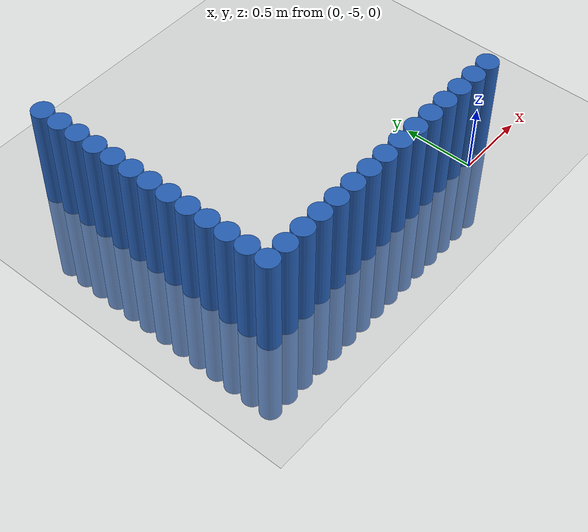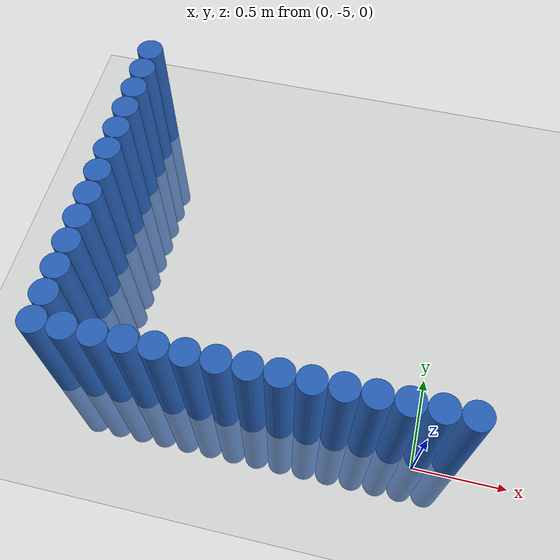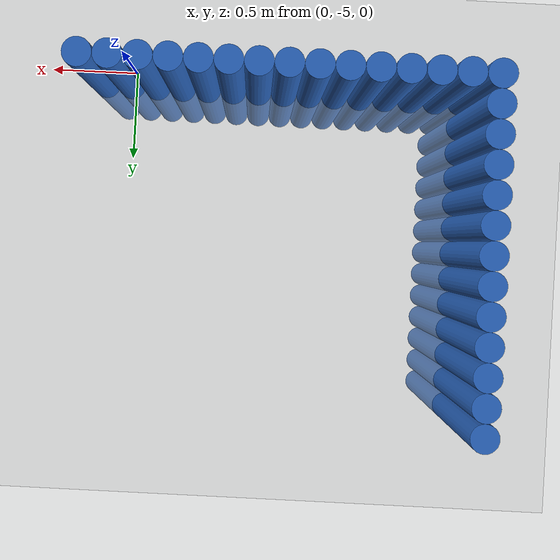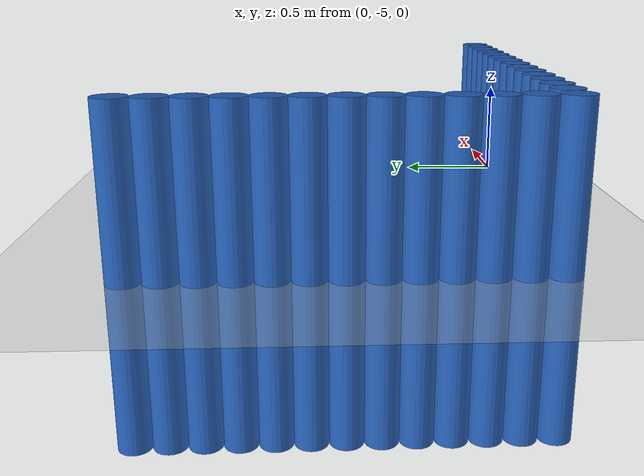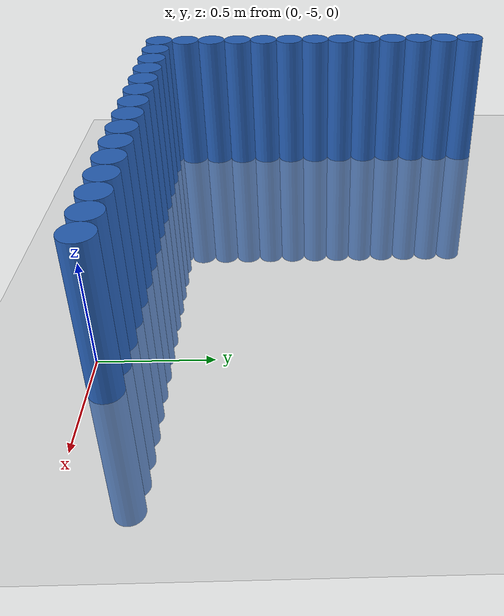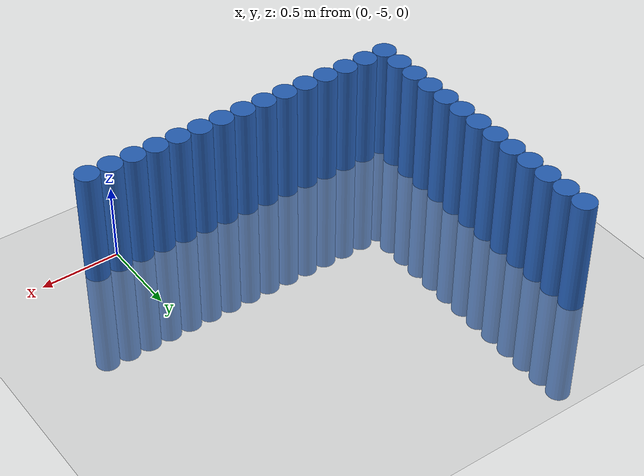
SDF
<sdf version="1.6">
 <world name="default">
  <model name="ground_plane">
   <static>1</static>
   <link name="link">
    <collision name="collision">
     <geometry><plane><normal>0 0 1</normal><size>100 100</size></plane></geometry>
     <surface><friction><ode><mu>100</mu><mu2>50</mu2></ode></friction></surface>
    </collision>
    <visual name="visual">
     <cast_shadows>0</cast_shadows>
     <geometry><plane><normal>0 0 1</normal><size>100 100</size></plane></geometry>
     <material>
      <script><uri>file://media/materials/scripts/gazebo.material</uri><name>Gazebo/Grey</name></script>
     </material>
    </visual>
   </link>
  </model>
  <model name="unit_cylinder_15">
   <static>1</static>
   <pose>0.175000 -4.925000 0.000000 0.000000 0.000000 0.000000</pose>
   <link name="link">
    <inertial>
     <mass>1</mass>
     <inertia><ixx>0.145833</ixx><ixy>0</ixy><ixz>0</ixz><iyy>0.145833</iyy><iyz>0</iyz><izz>0.125</izz></inertia>
    </inertial>
    <collision name="collision">
     <geometry><cylinder><radius>0.075000</radius><length>1.5</length></cylinder></geometry>
    </collision>
    <visual name="visual">
     <geometry><cylinder><radius>0.075000</radius><length>1.5</length></cylinder></geometry>
     <material>
      <ambient>0.152000 0.379000 0.720000 1</ambient>
      <diffuse>0.152000 0.379000 0.720000 1</diffuse>
     </material>
     <material>
      <script><name>Gazebo/Grey</name><uri>file://media/materials/scripts/gazebo.material</uri></script>
     </material>
    </visual>
   </link>
  </model>
  <model name="unit_cylinder_16">
   <static>1</static>
   <pose>0.025000 -4.925000 0.000000 0.000000 0.000000 0.000000</pose>
   <link name="link">
    <inertial>
     <mass>1</mass>
     <inertia><ixx>0.145833</ixx><ixy>0</ixy><ixz>0</ixz><iyy>0.145833</iyy><iyz>0</iyz><izz>0.125</izz></inertia>
    </inertial>
    <collision name="collision">
     <geometry><cylinder><radius>0.075000</radius><length>1.5</length></cylinder></geometry>
    </collision>
    <visual name="visual">
     <geometry><cylinder><radius>0.075000</radius><length>1.5</length></cylinder></geometry>
     <material>
      <ambient>0.152000 0.379000 0.720000 1</ambient>
      <diffuse>0.152000 0.379000 0.720000 1</diffuse>
     </material>
     <material>
      <script><name>Gazebo/Grey</name><uri>file://media/materials/scripts/gazebo.material</uri></script>
     </material>
    </visual>
   </link>
  </model>
  <model name="unit_cylinder_17">
   <static>1</static>
   <pose>-0.125000 -4.925000 0.000000 0.000000 0.000000 0.000000</pose>
   <link name="link">
    <inertial>
     <mass>1</mass>
     <inertia><ixx>0.145833</ixx><ixy>0</ixy><ixz>0</ixz><iyy>0.145833</iyy><iyz>0</iyz><izz>0.125</izz></inertia>
    </inertial>
    <collision name="collision">
     <geometry><cylinder><radius>0.075000</radius><length>1.5</length></cylinder></geometry>
    </collision>
    <visual name="visual">
     <geometry><cylinder><radius>0.075000</radius><length>1.5</length></cylinder></geometry>
     <material>
      <ambient>0.152000 0.379000 0.720000 1</ambient>
      <diffuse>0.152000 0.379000 0.720000 1</diffuse>
     </material>
     <material>
      <script><name>Gazebo/Grey</name><uri>file://media/materials/scripts/gazebo.material</uri></script>
     </material>
    </visual>
   </link>
  </model>
  <model name="unit_cylinder_18">
   <static>1</static>
   <pose>-0.275000 -4.925000 0.000000 0.000000 0.000000 0.000000</pose>
   <link name="link">
    <inertial>
     <mass>1</mass>
     <inertia><ixx>0.145833</ixx><ixy>0</ixy><ixz>0</ixz><iyy>0.145833</iyy><iyz>0</iyz><izz>0.125</izz></inertia>
    </inertial>
    <collision name="collision">
     <geometry><cylinder><radius>0.075000</radius><length>1.5</length></cylinder></geometry>
    </collision>
    <visual name="visual">
     <geometry><cylinder><radius>0.075000</radius><length>1.5</length></cylinder></geometry>
     <material>
      <ambient>0.152000 0.379000 0.720000 1</ambient>
      <diffuse>0.152000 0.379000 0.720000 1</diffuse>
     </material>
     <material>
      <script><name>Gazebo/Grey</name><uri>file://media/materials/scripts/gazebo.material</uri></script>
     </material>
    </visual>
   </link>
  </model>
  <model name="unit_cylinder_19">
   <static>1</static>
   <pose>-0.425000 -4.925000 0.000000 0.000000 0.000000 0.000000</pose>
   <link name="link">
    <inertial>
     <mass>1</mass>
     <inertia><ixx>0.145833</ixx><ixy>0</ixy><ixz>0</ixz><iyy>0.145833</iyy><iyz>0</iyz><izz>0.125</izz></inertia>
    </inertial>
    <collision name="collision">
     <geometry><cylinder><radius>0.075000</radius><length>1.5</length></cylinder></geometry>
    </collision>
    <visual name="visual">
     <geometry><cylinder><radius>0.075000</radius><length>1.5</length></cylinder></geometry>
     <material>
      <ambient>0.152000 0.379000 0.720000 1</ambient>
      <diffuse>0.152000 0.379000 0.720000 1</diffuse>
     </material>
     <material>
      <script><name>Gazebo/Grey</name><uri>file://media/materials/scripts/gazebo.material</uri></script>
     </material>
    </visual>
   </link>
  </model>
  <model name="unit_cylinder_20">
   <static>1</static>
   <pose>-0.575000 -4.925000 0.000000 0.000000 0.000000 0.000000</pose>
   <link name="link">
    <inertial>
     <mass>1</mass>
     <inertia><ixx>0.145833</ixx><ixy>0</ixy><ixz>0</ixz><iyy>0.145833</iyy><iyz>0</iyz><izz>0.125</izz></inertia>
    </inertial>
    <collision name="collision">
     <geometry><cylinder><radius>0.075000</radius><length>1.5</length></cylinder></geometry>
    </collision>
    <visual name="visual">
     <geometry><cylinder><radius>0.075000</radius><length>1.5</length></cylinder></geometry>
     <material>
      <ambient>0.152000 0.379000 0.720000 1</ambient>
      <diffuse>0.152000 0.379000 0.720000 1</diffuse>
     </material>
     <material>
      <script><name>Gazebo/Grey</name><uri>file://media/materials/scripts/gazebo.material</uri></script>
     </material>
    </visual>
   </link>
  </model>
  <model name="unit_cylinder_21">
   <static>1</static>
   <pose>-0.725000 -4.925000 0.000000 0.000000 0.000000 0.000000</pose>
   <link name="link">
    <inertial>
     <mass>1</mass>
     <inertia><ixx>0.145833</ixx><ixy>0</ixy><ixz>0</ixz><iyy>0.145833</iyy><iyz>0</iyz><izz>0.125</izz></inertia>
    </inertial>
    <collision name="collision">
     <geometry><cylinder><radius>0.075000</radius><length>1.5</length></cylinder></geometry>
    </collision>
    <visual name="visual">
     <geometry><cylinder><radius>0.075000</radius><length>1.5</length></cylinder></geometry>
     <material>
      <ambient>0.152000 0.379000 0.720000 1</ambient>
      <diffuse>0.152000 0.379000 0.720000 1</diffuse>
     </material>
     <material>
      <script><name>Gazebo/Grey</name><uri>file://media/materials/scripts/gazebo.material</uri></script>
     </material>
    </visual>
   </link>
  </model>
  <model name="unit_cylinder_22">
   <static>1</static>
   <pose>-0.875000 -4.925000 0.000000 0.000000 0.000000 0.000000</pose>
   <link name="link">
    <inertial>
     <mass>1</mass>
     <inertia><ixx>0.145833</ixx><ixy>0</ixy><ixz>0</ixz><iyy>0.145833</iyy><iyz>0</iyz><izz>0.125</izz></inertia>
    </inertial>
    <collision name="collision">
     <geometry><cylinder><radius>0.075000</radius><length>1.5</length></cylinder></geometry>
    </collision>
    <visual name="visual">
     <geometry><cylinder><radius>0.075000</radius><length>1.5</length></cylinder></geometry>
     <material>
      <ambient>0.152000 0.379000 0.720000 1</ambient>
      <diffuse>0.152000 0.379000 0.720000 1</diffuse>
     </material>
     <material>
      <script><name>Gazebo/Grey</name><uri>file://media/materials/scripts/gazebo.material</uri></script>
     </material>
    </visual>
   </link>
  </model>
  <model name="unit_cylinder_23">
   <static>1</static>
   <pose>-1.025000 -4.925000 0.000000 0.000000 0.000000 0.000000</pose>
   <link name="link">
    <inertial>
     <mass>1</mass>
     <inertia><ixx>0.145833</ixx><ixy>0</ixy><ixz>0</ixz><iyy>0.145833</iyy><iyz>0</iyz><izz>0.125</izz></inertia>
    </inertial>
    <collision name="collision">
     <geometry><cylinder><radius>0.075000</radius><length>1.5</length></cylinder></geometry>
    </collision>
    <visual name="visual">
     <geometry><cylinder><radius>0.075000</radius><length>1.5</length></cylinder></geometry>
     <material>
      <ambient>0.152000 0.379000 0.720000 1</ambient>
      <diffuse>0.152000 0.379000 0.720000 1</diffuse>
     </material>
     <material>
      <script><name>Gazebo/Grey</name><uri>file://media/materials/scripts/gazebo.material</uri></script>
     </material>
    </visual>
   </link>
  </model>
  <model name="unit_cylinder_24">
   <static>1</static>
   <pose>-1.175000 -4.925000 0.000000 0.000000 0.000000 0.000000</pose>
   <link name="link">
    <inertial>
     <mass>1</mass>
     <inertia><ixx>0.145833</ixx><ixy>0</ixy><ixz>0</ixz><iyy>0.145833</iyy><iyz>0</iyz><izz>0.125</izz></inertia>
    </inertial>
    <collision name="collision">
     <geometry><cylinder><radius>0.075000</radius><length>1.5</length></cylinder></geometry>
    </collision>
    <visual name="visual">
     <geometry><cylinder><radius>0.075000</radius><length>1.5</length></cylinder></geometry>
     <material>
      <ambient>0.152000 0.379000 0.720000 1</ambient>
      <diffuse>0.152000 0.379000 0.720000 1</diffuse>
     </material>
     <material>
      <script><name>Gazebo/Grey</name><uri>file://media/materials/scripts/gazebo.material</uri></script>
     </material>
    </visual>
   </link>
  </model>
  <model name="unit_cylinder_25">
   <static>1</static>
   <pose>-1.325000 -4.925000 0.000000 0.000000 0.000000 0.000000</pose>
   <link name="link">
    <inertial>
     <mass>1</mass>
     <inertia><ixx>0.145833</ixx><ixy>0</ixy><ixz>0</ixz><iyy>0.145833</iyy><iyz>0</iyz><izz>0.125</izz></inertia>
    </inertial>
    <collision name="collision">
     <geometry><cylinder><radius>0.075000</radius><length>1.5</length></cylinder></geometry>
    </collision>
    <visual name="visual">
     <geometry><cylinder><radius>0.075000</radius><length>1.5</length></cylinder></geometry>
     <material>
      <ambient>0.152000 0.379000 0.720000 1</ambient>
      <diffuse>0.152000 0.379000 0.720000 1</diffuse>
     </material>
     <material>
      <script><name>Gazebo/Grey</name><uri>file://media/materials/scripts/gazebo.material</uri></script>
     </material>
    </visual>
   </link>
  </model>
  <model name="unit_cylinder_26">
   <static>1</static>
   <pose>-1.475000 -4.925000 0.000000 0.000000 0.000000 0.000000</pose>
   <link name="link">
    <inertial>
     <mass>1</mass>
     <inertia><ixx>0.145833</ixx><ixy>0</ixy><ixz>0</ixz><iyy>0.145833</iyy><iyz>0</iyz><izz>0.125</izz></inertia>
    </inertial>
    <collision name="collision">
     <geometry><cylinder><radius>0.075000</radius><length>1.5</length></cylinder></geometry>
    </collision>
    <visual name="visual">
     <geometry><cylinder><radius>0.075000</radius><length>1.5</length></cylinder></geometry>
     <material>
      <ambient>0.152000 0.379000 0.720000 1</ambient>
      <diffuse>0.152000 0.379000 0.720000 1</diffuse>
     </material>
     <material>
      <script><name>Gazebo/Grey</name><uri>file://media/materials/scripts/gazebo.material</uri></script>
     </material>
    </visual>
   </link>
  </model>
  <model name="unit_cylinder_27">
   <static>1</static>
   <pose>-1.625000 -4.925000 0.000000 0.000000 0.000000 0.000000</pose>
   <link name="link">
    <inertial>
     <mass>1</mass>
     <inertia><ixx>0.145833</ixx><ixy>0</ixy><ixz>0</ixz><iyy>0.145833</iyy><iyz>0</iyz><izz>0.125</izz></inertia>
    </inertial>
    <collision name="collision">
     <geometry><cylinder><radius>0.075000</radius><length>1.5</length></cylinder></geometry>
    </collision>
    <visual name="visual">
     <geometry><cylinder><radius>0.075000</radius><length>1.5</length></cylinder></geometry>
     <material>
      <ambient>0.152000 0.379000 0.720000 1</ambient>
      <diffuse>0.152000 0.379000 0.720000 1</diffuse>
     </material>
     <material>
      <script><name>Gazebo/Grey</name><uri>file://media/materials/scripts/gazebo.material</uri></script>
     </material>
    </visual>
   </link>
  </model>
  <model name="unit_cylinder_28">
   <static>1</static>
   <pose>-1.775000 -4.925000 0.000000 0.000000 0.000000 0.000000</pose>
   <link name="link">
    <inertial>
     <mass>1</mass>
     <inertia><ixx>0.145833</ixx><ixy>0</ixy><ixz>0</ixz><iyy>0.145833</iyy><iyz>0</iyz><izz>0.125</izz></inertia>
    </inertial>
    <collision name="collision">
     <geometry><cylinder><radius>0.075000</radius><length>1.5</length></cylinder></geometry>
    </collision>
    <visual name="visual">
     <geometry><cylinder><radius>0.075000</radius><length>1.5</length></cylinder></geometry>
     <material>
      <ambient>0.152000 0.379000 0.720000 1</ambient>
      <diffuse>0.152000 0.379000 0.720000 1</diffuse>
     </material>
     <material>
      <script><name>Gazebo/Grey</name><uri>file://media/materials/scripts/gazebo.material</uri></script>
     </material>
    </visual>
   </link>
  </model>
  <model name="unit_cylinder_29">
   <static>1</static>
   <pose>-1.925000 -4.925000 0.000000 0.000000 0.000000 0.000000</pose>
   <link name="link">
    <inertial>
     <mass>1</mass>
     <inertia><ixx>0.145833</ixx><ixy>0</ixy><ixz>0</ixz><iyy>0.145833</iyy><iyz>0</iyz><izz>0.125</izz></inertia>
    </inertial>
    <collision name="collision">
     <geometry><cylinder><radius>0.075000</radius><length>1.5</length></cylinder></geometry>
    </collision>
    <visual name="visual">
     <geometry><cylinder><radius>0.075000</radius><length>1.5</length></cylinder></geometry>
     <material>
      <ambient>0.152000 0.379000 0.720000 1</ambient>
      <diffuse>0.152000 0.379000 0.720000 1</diffuse>
     </material>
     <material>
      <script><name>Gazebo/Grey</name><uri>file://media/materials/scripts/gazebo.material</uri></script>
     </material>
    </visual>
   </link>
  </model>
  <model name="unit_cylinder_31">
   <static>1</static>
   <pose>-1.925000 -4.775000 0.000000 0.000000 0.000000 0.000000</pose>
   <link name="link">
    <inertial>
     <mass>1</mass>
     <inertia><ixx>0.145833</ixx><ixy>0</ixy><ixz>0</ixz><iyy>0.145833</iyy><iyz>0</iyz><izz>0.125</izz></inertia>
    </inertial>
    <collision name="collision">
     <geometry><cylinder><radius>0.075000</radius><length>1.5</length></cylinder></geometry>
    </collision>
    <visual name="visual">
     <geometry><cylinder><radius>0.075000</radius><length>1.5</length></cylinder></geometry>
     <material>
      <ambient>0.152000 0.379000 0.720000 1</ambient>
      <diffuse>0.152000 0.379000 0.720000 1</diffuse>
     </material>
     <material>
      <script><name>Gazebo/Grey</name><uri>file://media/materials/scripts/gazebo.material</uri></script>
     </material>
    </visual>
   </link>
  </model>
  <model name="unit_cylinder_33">
   <static>1</static>
   <pose>-1.925000 -4.625000 0.000000 0.000000 0.000000 0.000000</pose>
   <link name="link">
    <inertial>
     <mass>1</mass>
     <inertia><ixx>0.145833</ixx><ixy>0</ixy><ixz>0</ixz><iyy>0.145833</iyy><iyz>0</iyz><izz>0.125</izz></inertia>
    </inertial>
    <collision name="collision">
     <geometry><cylinder><radius>0.075000</radius><length>1.5</length></cylinder></geometry>
    </collision>
    <visual name="visual">
     <geometry><cylinder><radius>0.075000</radius><length>1.5</length></cylinder></geometry>
     <material>
      <ambient>0.152000 0.379000 0.720000 1</ambient>
      <diffuse>0.152000 0.379000 0.720000 1</diffuse>
     </material>
     <material>
      <script><name>Gazebo/Grey</name><uri>file://media/materials/scripts/gazebo.material</uri></script>
     </material>
    </visual>
   </link>
  </model>
  <model name="unit_cylinder_35">
   <static>1</static>
   <pose>-1.925000 -4.475000 0.000000 0.000000 0.000000 0.000000</pose>
   <link name="link">
    <inertial>
     <mass>1</mass>
     <inertia><ixx>0.145833</ixx><ixy>0</ixy><ixz>0</ixz><iyy>0.145833</iyy><iyz>0</iyz><izz>0.125</izz></inertia>
    </inertial>
    <collision name="collision">
     <geometry><cylinder><radius>0.075000</radius><length>1.5</length></cylinder></geometry>
    </collision>
    <visual name="visual">
     <geometry><cylinder><radius>0.075000</radius><length>1.5</length></cylinder></geometry>
     <material>
      <ambient>0.152000 0.379000 0.720000 1</ambient>
      <diffuse>0.152000 0.379000 0.720000 1</diffuse>
     </material>
     <material>
      <script><name>Gazebo/Grey</name><uri>file://media/materials/scripts/gazebo.material</uri></script>
     </material>
    </visual>
   </link>
  </model>
  <model name="unit_cylinder_37">
   <static>1</static>
   <pose>-1.925000 -4.325000 0.000000 0.000000 0.000000 0.000000</pose>
   <link name="link">
    <inertial>
     <mass>1</mass>
     <inertia><ixx>0.145833</ixx><ixy>0</ixy><ixz>0</ixz><iyy>0.145833</iyy><iyz>0</iyz><izz>0.125</izz></inertia>
    </inertial>
    <collision name="collision">
     <geometry><cylinder><radius>0.075000</radius><length>1.5</length></cylinder></geometry>
    </collision>
    <visual name="visual">
     <geometry><cylinder><radius>0.075000</radius><length>1.5</length></cylinder></geometry>
     <material>
      <ambient>0.152000 0.379000 0.720000 1</ambient>
      <diffuse>0.152000 0.379000 0.720000 1</diffuse>
     </material>
     <material>
      <script><name>Gazebo/Grey</name><uri>file://media/materials/scripts/gazebo.material</uri></script>
     </material>
    </visual>
   </link>
  </model>
  <model name="unit_cylinder_39">
   <static>1</static>
   <pose>-1.925000 -4.175000 0.000000 0.000000 0.000000 0.000000</pose>
   <link name="link">
    <inertial>
     <mass>1</mass>
     <inertia><ixx>0.145833</ixx><ixy>0</ixy><ixz>0</ixz><iyy>0.145833</iyy><iyz>0</iyz><izz>0.125</izz></inertia>
    </inertial>
    <collision name="collision">
     <geometry><cylinder><radius>0.075000</radius><length>1.5</length></cylinder></geometry>
    </collision>
    <visual name="visual">
     <geometry><cylinder><radius>0.075000</radius><length>1.5</length></cylinder></geometry>
     <material>
      <ambient>0.152000 0.379000 0.720000 1</ambient>
      <diffuse>0.152000 0.379000 0.720000 1</diffuse>
     </material>
     <material>
      <script><name>Gazebo/Grey</name><uri>file://media/materials/scripts/gazebo.material</uri></script>
     </material>
    </visual>
   </link>
  </model>
  <model name="unit_cylinder_41">
   <static>1</static>
   <pose>-1.925000 -4.025000 0.000000 0.000000 0.000000 0.000000</pose>
   <link name="link">
    <inertial>
     <mass>1</mass>
     <inertia><ixx>0.145833</ixx><ixy>0</ixy><ixz>0</ixz><iyy>0.145833</iyy><iyz>0</iyz><izz>0.125</izz></inertia>
    </inertial>
    <collision name="collision">
     <geometry><cylinder><radius>0.075000</radius><length>1.5</length></cylinder></geometry>
    </collision>
    <visual name="visual">
     <geometry><cylinder><radius>0.075000</radius><length>1.5</length></cylinder></geometry>
     <material>
      <ambient>0.152000 0.379000 0.720000 1</ambient>
      <diffuse>0.152000 0.379000 0.720000 1</diffuse>
     </material>
     <material>
      <script><name>Gazebo/Grey</name><uri>file://media/materials/scripts/gazebo.material</uri></script>
     </material>
    </visual>
   </link>
  </model>
  <model name="unit_cylinder_43">
   <static>1</static>
   <pose>-1.925000 -3.875000 0.000000 0.000000 0.000000 0.000000</pose>
   <link name="link">
    <inertial>
     <mass>1</mass>
     <inertia><ixx>0.145833</ixx><ixy>0</ixy><ixz>0</ixz><iyy>0.145833</iyy><iyz>0</iyz><izz>0.125</izz></inertia>
    </inertial>
    <collision name="collision">
     <geometry><cylinder><radius>0.075000</radius><length>1.5</length></cylinder></geometry>
    </collision>
    <visual name="visual">
     <geometry><cylinder><radius>0.075000</radius><length>1.5</length></cylinder></geometry>
     <material>
      <ambient>0.152000 0.379000 0.720000 1</ambient>
      <diffuse>0.152000 0.379000 0.720000 1</diffuse>
     </material>
     <material>
      <script><name>Gazebo/Grey</name><uri>file://media/materials/scripts/gazebo.material</uri></script>
     </material>
    </visual>
   </link>
  </model>
  <model name="unit_cylinder_45">
   <static>1</static>
   <pose>-1.925000 -3.725000 0.000000 0.000000 0.000000 0.000000</pose>
   <link name="link">
    <inertial>
     <mass>1</mass>
     <inertia><ixx>0.145833</ixx><ixy>0</ixy><ixz>0</ixz><iyy>0.145833</iyy><iyz>0</iyz><izz>0.125</izz></inertia>
    </inertial>
    <collision name="collision">
     <geometry><cylinder><radius>0.075000</radius><length>1.5</length></cylinder></geometry>
    </collision>
    <visual name="visual">
     <geometry><cylinder><radius>0.075000</radius><length>1.5</length></cylinder></geometry>
     <material>
      <ambient>0.152000 0.379000 0.720000 1</ambient>
      <diffuse>0.152000 0.379000 0.720000 1</diffuse>
     </material>
     <material>
      <script><name>Gazebo/Grey</name><uri>file://media/materials/scripts/gazebo.material</uri></script>
     </material>
    </visual>
   </link>
  </model>
  <model name="unit_cylinder_47">
   <static>1</static>
   <pose>-1.925000 -3.575000 0.000000 0.000000 0.000000 0.000000</pose>
   <link name="link">
    <inertial>
     <mass>1</mass>
     <inertia><ixx>0.145833</ixx><ixy>0</ixy><ixz>0</ixz><iyy>0.145833</iyy><iyz>0</iyz><izz>0.125</izz></inertia>
    </inertial>
    <collision name="collision">
     <geometry><cylinder><radius>0.075000</radius><length>1.5</length></cylinder></geometry>
    </collision>
    <visual name="visual">
     <geometry><cylinder><radius>0.075000</radius><length>1.5</length></cylinder></geometry>
     <material>
      <ambient>0.152000 0.379000 0.720000 1</ambient>
      <diffuse>0.152000 0.379000 0.720000 1</diffuse>
     </material>
     <material>
      <script><name>Gazebo/Grey</name><uri>file://media/materials/scripts/gazebo.material</uri></script>
     </material>
    </visual>
   </link>
  </model>
  <model name="unit_cylinder_49">
   <static>1</static>
   <pose>-1.925000 -3.425000 0.000000 0.000000 0.000000 0.000000</pose>
   <link name="link">
    <inertial>
     <mass>1</mass>
     <inertia><ixx>0.145833</ixx><ixy>0</ixy><ixz>0</ixz><iyy>0.145833</iyy><iyz>0</iyz><izz>0.125</izz></inertia>
    </inertial>
    <collision name="collision">
     <geometry><cylinder><radius>0.075000</radius><length>1.5</length></cylinder></geometry>
    </collision>
    <visual name="visual">
     <geometry><cylinder><radius>0.075000</radius><length>1.5</length></cylinder></geometry>
     <material>
      <ambient>0.152000 0.379000 0.720000 1</ambient>
      <diffuse>0.152000 0.379000 0.720000 1</diffuse>
     </material>
     <material>
      <script><name>Gazebo/Grey</name><uri>file://media/materials/scripts/gazebo.material</uri></script>
     </material>
    </visual>
   </link>
  </model>
  <model name="unit_cylinder_51">
   <static>1</static>
   <pose>-1.925000 -3.275000 0.000000 0.000000 0.000000 0.000000</pose>
   <link name="link">
    <inertial>
     <mass>1</mass>
     <inertia><ixx>0.145833</ixx><ixy>0</ixy><ixz>0</ixz><iyy>0.145833</iyy><iyz>0</iyz><izz>0.125</izz></inertia>
    </inertial>
    <collision name="collision">
     <geometry><cylinder><radius>0.075000</radius><length>1.5</length></cylinder></geometry>
    </collision>
    <visual name="visual">
     <geometry><cylinder><radius>0.075000</radius><length>1.5</length></cylinder></geometry>
     <material>
      <ambient>0.152000 0.379000 0.720000 1</ambient>
      <diffuse>0.152000 0.379000 0.720000 1</diffuse>
     </material>
     <material>
      <script><name>Gazebo/Grey</name><uri>file://media/materials/scripts/gazebo.material</uri></script>
     </material>
    </visual>
   </link>
  </model>
  <model name="unit_cylinder_53">
   <static>1</static>
   <pose>-1.925000 -3.125000 0.000000 0.000000 0.000000 0.000000</pose>
   <link name="link">
    <inertial>
     <mass>1</mass>
     <inertia><ixx>0.145833</ixx><ixy>0</ixy><ixz>0</ixz><iyy>0.145833</iyy><iyz>0</iyz><izz>0.125</izz></inertia>
    </inertial>
    <collision name="collision">
     <geometry><cylinder><radius>0.075000</radius><length>1.5</length></cylinder></geometry>
    </collision>
    <visual name="visual">
     <geometry><cylinder><radius>0.075000</radius><length>1.5</length></cylinder></geometry>
     <material>
      <ambient>0.152000 0.379000 0.720000 1</ambient>
      <diffuse>0.152000 0.379000 0.720000 1</diffuse>
     </material>
     <material>
      <script><name>Gazebo/Grey</name><uri>file://media/materials/scripts/gazebo.material</uri></script>
     </material>
    </visual>
   </link>
  </model>
 </world>
</sdf>
